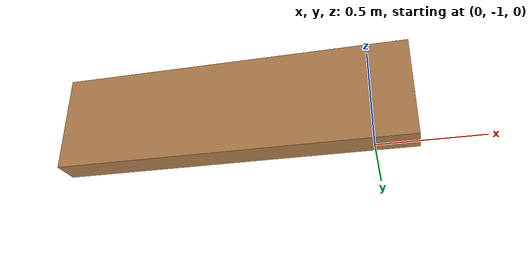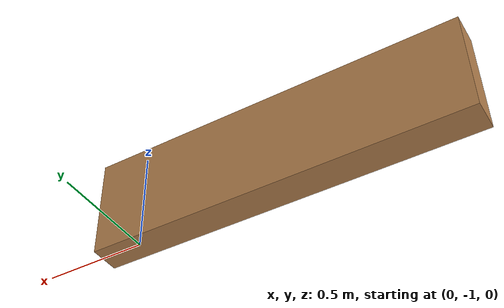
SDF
<?xml version='1.0'?>
<sdf version='1.7'>
  <model name='pared18'>
    <pose>-0.695 -0.5425 0 0 -0 0</pose>
    <link name='Wall_1'>
      <collision name='Wall_1_Collision'>
        <geometry>
          <box>
            <size>1.8 0.15 0.5</size>
          </box>
        </geometry>
        <pose>0 0 0.25 0 -0 0</pose>
      </collision>
      <visual name='Wall_1_Visual'>
        <pose>0 0 0.25 0 -0 0</pose>
        <geometry>
          <box>
            <size>1.8 0.15 0.5</size>
          </box>
        </geometry>
        <material>
          <script>
            <uri>file://media/materials/scripts/gazebo.material</uri>
            <name>Gazebo/Wood</name>
          </script>
          <ambient>0.435294 0.796078 0.67451 1</ambient>
        </material>
        <meta>
          <layer>0</layer>
        </meta>
      </visual>
      <pose>0 -0.4675 0 0 -0 3.14159</pose>
    </link>
    <static>1</static>
  </model>
</sdf>
